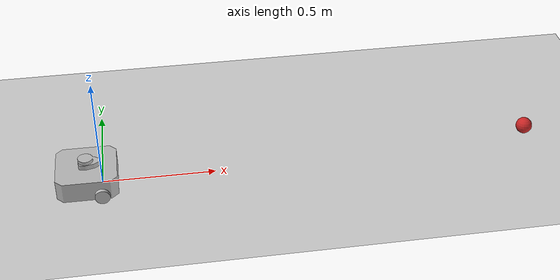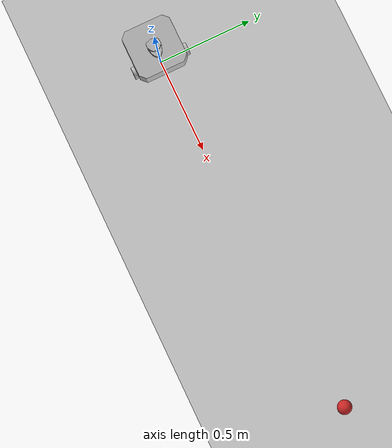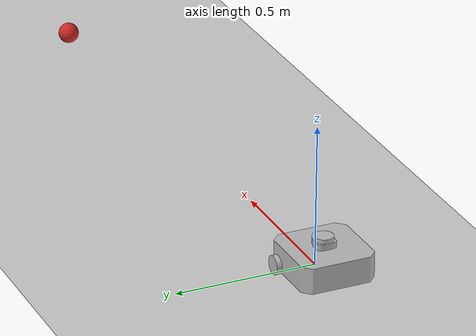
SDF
<sdf version="1.7">
 <world name="default">
  <model name="ground_plane">
   <static>1</static>
   <link name="link">
    <collision name="collision">
     <geometry><plane><normal>0 0 1</normal><size>100 100</size></plane></geometry>
     <surface><friction><ode><mu>100</mu><mu2>50</mu2></ode></friction></surface>
    </collision>
    <visual name="visual">
     <cast_shadows>0</cast_shadows>
     <geometry><plane><normal>0 0 1</normal><size>100 100</size></plane></geometry>
     <material>
      <script><uri>file://media/materials/scripts/gazebo.material</uri><name>Gazebo/Grey</name></script>
     </material>
    </visual>
   </link>
  </model>
  <light name="sun" type="directional">
   <pose>0 0 10 0 -0 0</pose>
   <diffuse>0.8 0.8 0.8 1</diffuse>
   <specular>0.2 0.2 0.2 1</specular>
   <attenuation>
    <range>1000</range>
    <constant>0.9</constant>
    <linear>0.01</linear>
    <quadratic>0.001</quadratic>
   </attenuation>
   <direction>-0.5 0.1 -0.9</direction>
   <spot><inner_angle>0</inner_angle><outer_angle>0</outer_angle><falloff>0</falloff></spot>
  </light>
  <scene><shadows>0</shadows><ambient>0.4 0.4 0.4 1</ambient><background>0.7 0.7 0.7 1</background></scene>
  <physics type="ode">
   <real_time_update_rate>1000</real_time_update_rate>
   <max_step_size>0.001</max_step_size>
   <real_time_factor>1</real_time_factor>
   <ode>
    <solver>
     <type>quick</type>
     <iters>150</iters>
     <precon_iters>0</precon_iters>
     <sor>1.4</sor>
     <use_dynamic_moi_rescaling>1</use_dynamic_moi_rescaling>
    </solver>
    <constraints>
     <cfm>1e-05</cfm>
     <erp>0.2</erp>
     <contact_max_correcting_vel>2000</contact_max_correcting_vel>
     <contact_surface_layer>0.01</contact_surface_layer>
    </constraints>
   </ode>
  </physics>
  <gravity>0 0 -9.8</gravity>
  <magnetic_field>6e-06 2.3e-05 -4.2e-05</magnetic_field>
  <atmosphere type="adiabatic"/>
  <audio><device>default</device></audio>
  <spherical_coordinates>
   <surface_model>EARTH_WGS84</surface_model>
   <latitude_deg>0</latitude_deg>
   <longitude_deg>0</longitude_deg>
   <elevation>0</elevation>
   <heading_deg>0</heading_deg>
  </spherical_coordinates>
  <model name="waffle_pi">
   <pose>4.8e-05 2e-06 0.007912 1.3e-05 0.006199 0.000507</pose>
   <link name="base_footprint">
    <inertial>
     <inertia><ixx>1</ixx><ixy>0</ixy><ixz>0</ixz><iyy>1</iyy><iyz>0</iyz><izz>1</izz></inertia>
     <mass>1</mass>
    </inertial>
   </link>
   <link name="base_link">
    <inertial>
     <pose>-0.064 0 0.048 0 -0 0</pose>
     <inertia>
      <ixx>0.0421114</ixx>
      <ixy>0</ixy>
      <ixz>0</ixz>
      <iyy>0.0421114</iyy>
      <iyz>0</iyz>
      <izz>0.0752549</izz>
     </inertia>
     <mass>1.37291</mass>
    </inertial>
    <collision name="base_collision">
     <pose>-0.064 0 0.048 0 -0 0</pose>
     <geometry><box><size>0.265 0.265 0.089</size></box></geometry>
    </collision>
    <visual name="base_visual">
     <pose>-0.064 0 0 0 -0 0</pose>
     <geometry>
      <mesh><uri>model://turtlebot3_common/meshes/waffle_pi_base.dae</uri><scale>0.001 0.001 0.001</scale></mesh>
     </geometry>
    </visual>
   </link>
   <link name="imu_link">
    <sensor name="tb3_imu" type="imu">
     <always_on>1</always_on>
     <update_rate>200</update_rate>
     <imu>
      <angular_velocity>
       <x><noise type="gaussian"><mean>0</mean><stddev>0.0002</stddev></noise></x>
       <y><noise type="gaussian"><mean>0</mean><stddev>0.0002</stddev></noise></y>
       <z><noise type="gaussian"><mean>0</mean><stddev>0.0002</stddev></noise></z>
      </angular_velocity>
      <linear_acceleration>
       <x><noise type="gaussian"><mean>0</mean><stddev>0.017</stddev></noise></x>
       <y><noise type="gaussian"><mean>0</mean><stddev>0.017</stddev></noise></y>
       <z><noise type="gaussian"><mean>0</mean><stddev>0.017</stddev></noise></z>
      </linear_acceleration>
     </imu>
     <plugin name="turtlebot3_imu" filename="libgazebo_ros_imu_sensor.so">
      <ros><remapping>~/out:=imu</remapping></ros>
     </plugin>
    </sensor>
    <inertial>
     <inertia><ixx>1</ixx><ixy>0</ixy><ixz>0</ixz><iyy>1</iyy><iyz>0</iyz><izz>1</izz></inertia>
     <mass>1</mass>
    </inertial>
   </link>
   <link name="base_scan">
    <inertial>
     <pose>-0.052 0 0.111 0 -0 0</pose>
     <inertia><ixx>0.001</ixx><ixy>0</ixy><ixz>0</ixz><iyy>0.001</iyy><iyz>0</iyz><izz>0.001</izz></inertia>
     <mass>0.114</mass>
    </inertial>
    <collision name="lidar_sensor_collision">
     <pose>-0.052 0 0.111 0 -0 0</pose>
     <geometry><cylinder><radius>0.0508</radius><length>0.055</length></cylinder></geometry>
    </collision>
    <visual name="lidar_sensor_visual">
     <pose>-0.064 0 0.121 0 -0 0</pose>
     <geometry>
      <mesh><uri>model://turtlebot3_common/meshes/lds.dae</uri><scale>0.001 0.001 0.001</scale></mesh>
     </geometry>
    </visual>
    <sensor name="hls_lfcd_lds" type="ray">
     <always_on>1</always_on>
     <visualize>1</visualize>
     <pose>-0.064 0 0.121 0 -0 0</pose>
     <update_rate>5</update_rate>
     <ray>
      <scan>
       <horizontal>
        <samples>360</samples>
        <resolution>1</resolution>
        <min_angle>0</min_angle>
        <max_angle>6.28</max_angle>
       </horizontal>
       <vertical><samples>1</samples><min_angle>0</min_angle><max_angle>0</max_angle></vertical>
      </scan>
      <range><min>0.12</min><max>3.5</max><resolution>0.015</resolution></range>
      <noise><type>gaussian</type><mean>0</mean><stddev>0.01</stddev></noise>
     </ray>
     <plugin name="turtlebot3_laserscan" filename="libgazebo_ros_ray_sensor.so">
      <ros><remapping>~/out:=scan</remapping></ros>
      <output_type>sensor_msgs/LaserScan</output_type>
      <frame_name>base_scan</frame_name>
     </plugin>
    </sensor>
   </link>
   <link name="wheel_left_link">
    <inertial>
     <pose>0 0.144 0.023 -1.57 0 0</pose>
     <inertia>
      <ixx>0.00181582</ixx>
      <ixy>-9.3392e-12</ixy>
      <ixz>1.04909e-11</ixz>
      <iyy>0.00329221</iyy>
      <iyz>5.75694e-11</iyz>
      <izz>0.00181582</izz>
     </inertia>
     <mass>0.0284989</mass>
    </inertial>
    <collision name="wheel_left_collision">
     <pose>0 0.144 0.023 -1.57 0 0</pose>
     <geometry><cylinder><radius>0.033</radius><length>0.018</length></cylinder></geometry>
     <surface>
      <friction>
       <ode><mu>100000</mu><mu2>100000</mu2><fdir1>0 0 0</fdir1><slip1>0</slip1><slip2>0</slip2></ode>
      </friction>
      <contact>
       <ode>
        <soft_cfm>0</soft_cfm>
        <soft_erp>0.2</soft_erp>
        <kp>100000</kp>
        <kd>1</kd>
        <max_vel>0.01</max_vel>
        <min_depth>0.001</min_depth>
       </ode>
      </contact>
     </surface>
    </collision>
    <visual name="wheel_left_visual">
     <pose>0 0.144 0.023 0 -0 0</pose>
     <geometry>
      <mesh><uri>model://turtlebot3_common/meshes/tire.dae</uri><scale>0.001 0.001 0.001</scale></mesh>
     </geometry>
    </visual>
   </link>
   <link name="wheel_right_link">
    <inertial>
     <pose>0 -0.144 0.023 -1.57 0 0</pose>
     <inertia>
      <ixx>0.00181582</ixx>
      <ixy>-9.3392e-12</ixy>
      <ixz>1.04909e-11</ixz>
      <iyy>0.00329221</iyy>
      <iyz>5.75694e-11</iyz>
      <izz>0.00181582</izz>
     </inertia>
     <mass>0.0284989</mass>
    </inertial>
    <collision name="wheel_right_collision">
     <pose>0 -0.144 0.023 -1.57 0 0</pose>
     <geometry><cylinder><radius>0.033</radius><length>0.018</length></cylinder></geometry>
     <surface>
      <friction>
       <ode><mu>100000</mu><mu2>100000</mu2><fdir1>0 0 0</fdir1><slip1>0</slip1><slip2>0</slip2></ode>
      </friction>
      <contact>
       <ode>
        <soft_cfm>0</soft_cfm>
        <soft_erp>0.2</soft_erp>
        <kp>100000</kp>
        <kd>1</kd>
        <max_vel>0.01</max_vel>
        <min_depth>0.001</min_depth>
       </ode>
      </contact>
     </surface>
    </collision>
    <visual name="wheel_right_visual">
     <pose>0 -0.144 0.023 0 -0 0</pose>
     <geometry>
      <mesh><uri>model://turtlebot3_common/meshes/tire.dae</uri><scale>0.001 0.001 0.001</scale></mesh>
     </geometry>
    </visual>
   </link>
   <link name="caster_back_right_link">
    <pose>-0.177 -0.064 -0.004 -1.57 0 0</pose>
    <inertial>
     <mass>0.001</mass>
     <inertia><ixx>1e-05</ixx><ixy>0</ixy><ixz>0</ixz><iyy>1e-05</iyy><iyz>0</iyz><izz>1e-05</izz></inertia>
    </inertial>
    <collision name="collision">
     <geometry><sphere><radius>0.005</radius></sphere></geometry>
     <surface>
      <contact>
       <ode>
        <soft_cfm>0</soft_cfm>
        <soft_erp>0.2</soft_erp>
        <kp>100000</kp>
        <kd>1</kd>
        <max_vel>0.01</max_vel>
        <min_depth>0.001</min_depth>
       </ode>
      </contact>
     </surface>
    </collision>
   </link>
   <link name="caster_back_left_link">
    <pose>-0.177 0.064 -0.004 -1.57 0 0</pose>
    <inertial>
     <mass>0.001</mass>
     <inertia><ixx>1e-05</ixx><ixy>0</ixy><ixz>0</ixz><iyy>1e-05</iyy><iyz>0</iyz><izz>1e-05</izz></inertia>
    </inertial>
    <collision name="collision">
     <geometry><sphere><radius>0.005</radius></sphere></geometry>
     <surface>
      <contact>
       <ode>
        <soft_cfm>0</soft_cfm>
        <soft_erp>0.2</soft_erp>
        <kp>100000</kp>
        <kd>1</kd>
        <max_vel>0.01</max_vel>
        <min_depth>0.001</min_depth>
       </ode>
      </contact>
     </surface>
    </collision>
   </link>
   <link name="camera_link">
    <inertial>
     <inertia><ixx>1</ixx><ixy>0</ixy><ixz>0</ixz><iyy>1</iyy><iyz>0</iyz><izz>1</izz></inertia>
     <mass>1</mass>
    </inertial>
   </link>
   <link name="camera_rgb_optical_frame">
    <inertial>
     <pose>0.076 0 0.1 0 -0 0</pose>
     <inertia><ixx>0.001</ixx><ixy>0</ixy><ixz>0</ixz><iyy>0.001</iyy><iyz>0</iyz><izz>0.001</izz></inertia>
     <mass>0.035</mass>
    </inertial>
    <pose>0.076 0 0.1 0 -0 0</pose>
    <sensor name="camera" type="depth">
     <camera>
      <horizontal_fov>1.047</horizontal_fov>
      <image><width>320</width><height>240</height></image>
      <clip><near>0.1</near><far>100</far></clip>
     </camera>
     <plugin name="camera_controller" filename="libgazebo_ros_camera.so">
      <ros>
       <namespace>demo_cam</namespace>
       <remapping>mycamera/image_raw:=mycamera/image_demo</remapping>
       <remapping>mycamera/depth/image_raw:=mycamera/depth_demo</remapping>
       <remapping>mycamera/camera_info:=mycamera/raw_cam_info_demo</remapping>
       <remapping>mycamera/depth/camera_info:=mycamera/depth_cam_info_demo</remapping>
       <remapping>mycamera/points:=mycamera/points_demo</remapping>
      </ros>
      <camera_name>mycamera</camera_name>
      <min_depth>0.1</min_depth>
      <max_depth>500</max_depth>
     </plugin>
     <always_on>1</always_on>
     <update_rate>30</update_rate>
     <visualize>1</visualize>
    </sensor>
   </link>
   <joint name="base_joint" type="fixed">
    <parent>base_footprint</parent>
    <child>base_link</child>
    <pose>0 0 0.01 0 -0 0</pose>
   </joint>
   <joint name="wheel_left_joint" type="revolute">
    <parent>base_link</parent>
    <child>wheel_left_link</child>
    <pose>0 0.144 0.023 -1.57 0 0</pose>
    <axis>
     <xyz>0 0 1</xyz>
     <limit><lower>-1e+16</lower><upper>1e+16</upper></limit>
     <dynamics><spring_reference>0</spring_reference><spring_stiffness>0</spring_stiffness></dynamics>
    </axis>
   </joint>
   <joint name="wheel_right_joint" type="revolute">
    <parent>base_link</parent>
    <child>wheel_right_link</child>
    <pose>0 -0.144 0.023 -1.57 0 0</pose>
    <axis>
     <xyz>0 0 1</xyz>
     <limit><lower>-1e+16</lower><upper>1e+16</upper></limit>
     <dynamics><spring_reference>0</spring_reference><spring_stiffness>0</spring_stiffness></dynamics>
    </axis>
   </joint>
   <joint name="caster_back_right_joint" type="ball">
    <parent>base_link</parent>
    <child>caster_back_right_link</child>
   </joint>
   <joint name="caster_back_left_joint" type="ball">
    <parent>base_link</parent>
    <child>caster_back_left_link</child>
   </joint>
   <joint name="imu_joint" type="fixed">
    <parent>base_link</parent>
    <child>imu_link</child>
    <pose>-0.032 0 0.068 0 -0 0</pose>
    <axis><xyz>0 0 1</xyz><limit><lower>-1e+16</lower><upper>1e+16</upper></limit></axis>
   </joint>
   <joint name="lidar_joint" type="fixed">
    <parent>base_link</parent>
    <child>base_scan</child>
    <pose>-0.064 0 0.121 0 -0 0</pose>
    <axis><xyz>0 0 1</xyz><limit><lower>-1e+16</lower><upper>1e+16</upper></limit></axis>
   </joint>
   <joint name="camera_joint" type="fixed">
    <parent>base_link</parent>
    <child>camera_link</child>
    <pose>0.073 -0.011 0.084 0 -0 0</pose>
    <axis><xyz>0 0 1</xyz><limit><lower>-1e+16</lower><upper>1e+16</upper></limit></axis>
   </joint>
   <joint name="camera_rgb_joint" type="fixed">
    <parent>camera_link</parent>
    <child>camera_rgb_optical_frame</child>
    <pose>0.003 0.011 0.009 0 -0 0</pose>
    <axis><xyz>0 0 1</xyz><limit><lower>-1e+16</lower><upper>1e+16</upper></limit></axis>
   </joint>
   <plugin name="turtlebot3_diff_drive" filename="libgazebo_ros_diff_drive.so">
    <update_rate>30</update_rate>
    <left_joint>wheel_left_joint</left_joint>
    <right_joint>wheel_right_joint</right_joint>
    <wheel_separation>0.287</wheel_separation>
    <wheel_diameter>0.066</wheel_diameter>
    <max_wheel_torque>20</max_wheel_torque>
    <max_wheel_acceleration>1.0</max_wheel_acceleration>
    <command_topic>cmd_vel</command_topic>
    <publish_odom>1</publish_odom>
    <publish_odom_tf>1</publish_odom_tf>
    <publish_wheel_tf>0</publish_wheel_tf>
    <odometry_topic>odom</odometry_topic>
    <odometry_frame>odom</odometry_frame>
    <robot_base_frame>base_footprint</robot_base_frame>
   </plugin>
   <plugin name="turtlebot3_joint_state" filename="libgazebo_ros_joint_state_publisher.so">
    <ros><remapping>~/out:=joint_states</remapping></ros>
    <update_rate>30</update_rate>
    <joint_name>wheel_left_joint</joint_name>
    <joint_name>wheel_right_joint</joint_name>
   </plugin>
  </model>
  <model name="cricket_ball">
   <link name="link">
    <pose>0 0 0.0375 0 -0 0</pose>
    <inertial>
     <mass>0.1467</mass>
     <inertia>
      <ixx>8.25187e-05</ixx>
      <ixy>0</ixy>
      <ixz>0</ixz>
      <iyy>8.25187e-05</iyy>
      <iyz>0</iyz>
      <izz>8.25187e-05</izz>
     </inertia>
    </inertial>
    <collision name="collision">
     <geometry><sphere><radius>0.0375</radius></sphere></geometry>
     <surface>
      <contact>
       <poissons_ratio>0.347</poissons_ratio>
       <elastic_modulus>8.8e+09</elastic_modulus>
       <ode><kp>100000</kp><kd>100</kd><max_vel>100</max_vel><min_depth>0.001</min_depth></ode>
      </contact>
      <friction>
       <torsional>
        <coefficient>1</coefficient>
        <use_patch_radius>0</use_patch_radius>
        <surface_radius>0.01</surface_radius>
       </torsional>
      </friction>
     </surface>
    </collision>
    <visual name="visual">
     <geometry><sphere><radius>0.0375</radius></sphere></geometry>
     <material>
      <script><uri>file://media/materials/scripts/gazebo.material</uri><name>Gazebo/Red</name></script>
     </material>
    </visual>
    <velocity_decay><linear>0</linear><angular>0.005</angular></velocity_decay>
   </link>
   <pose>1.96304 0.076584 -0.001014 0 -0 0</pose>
  </model>
 </world>
</sdf>
